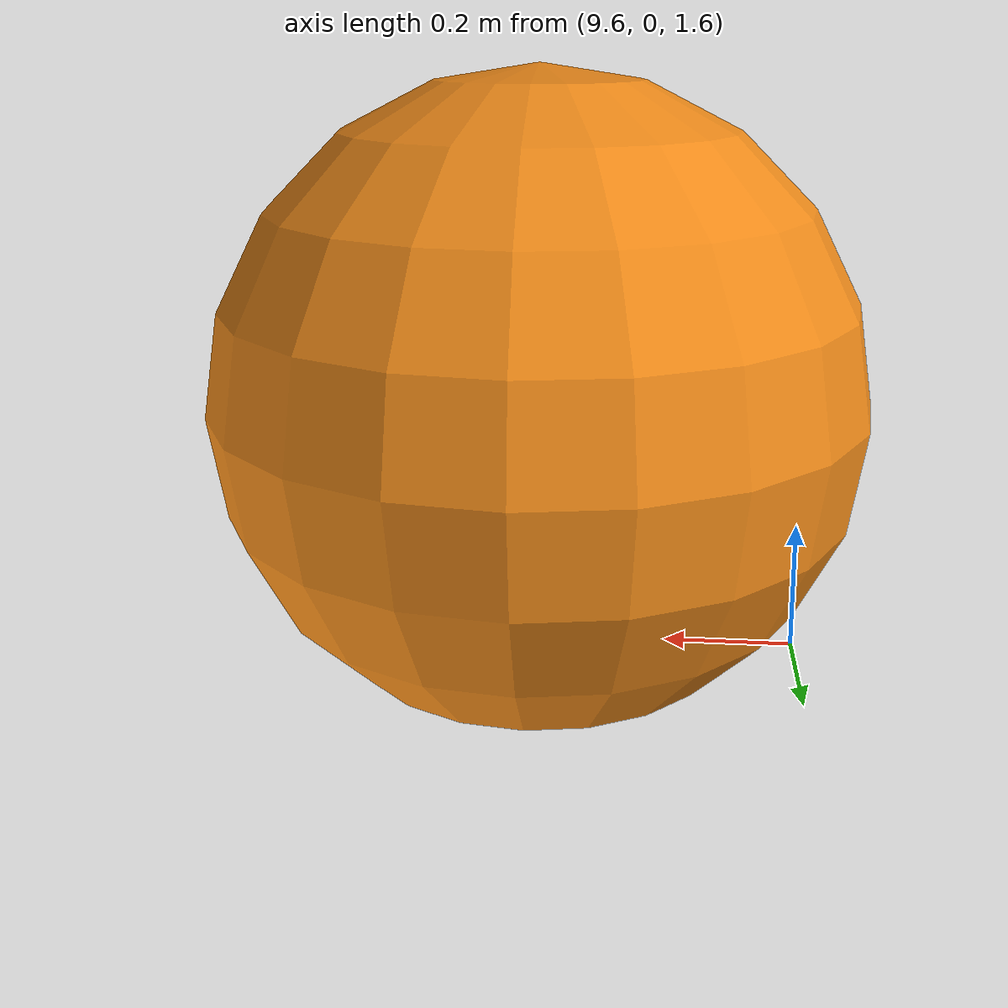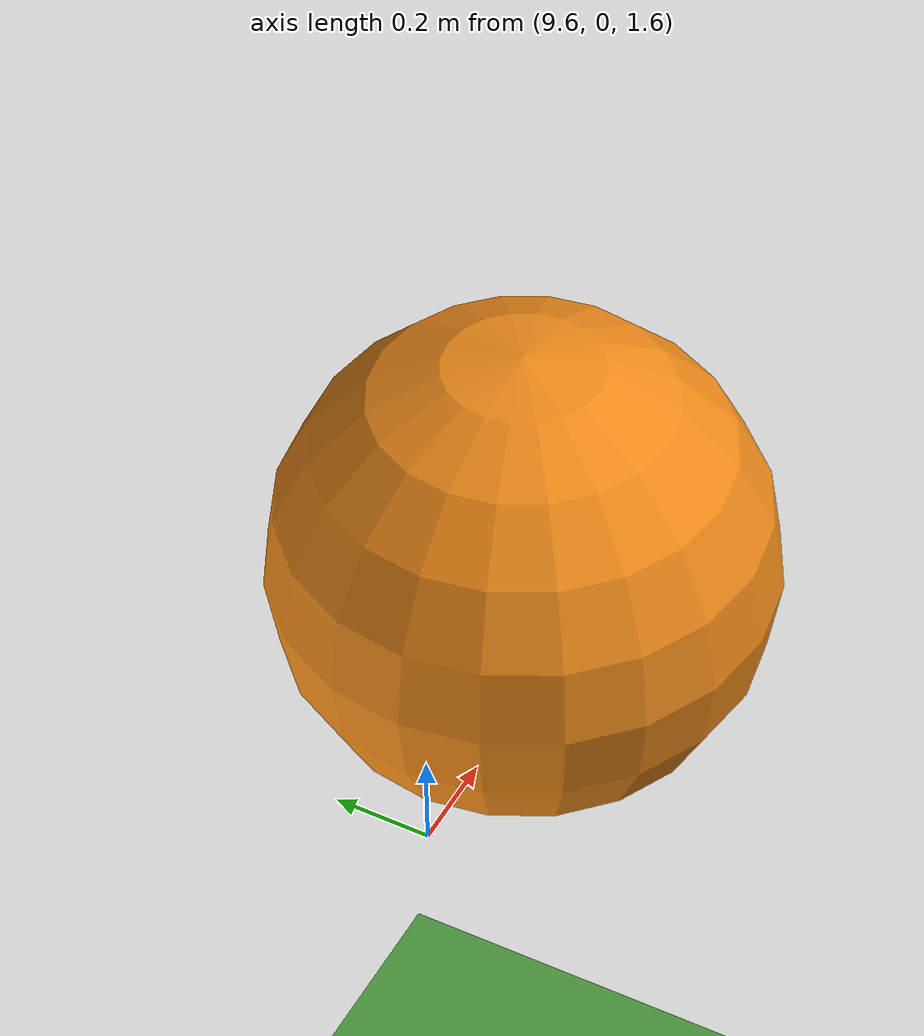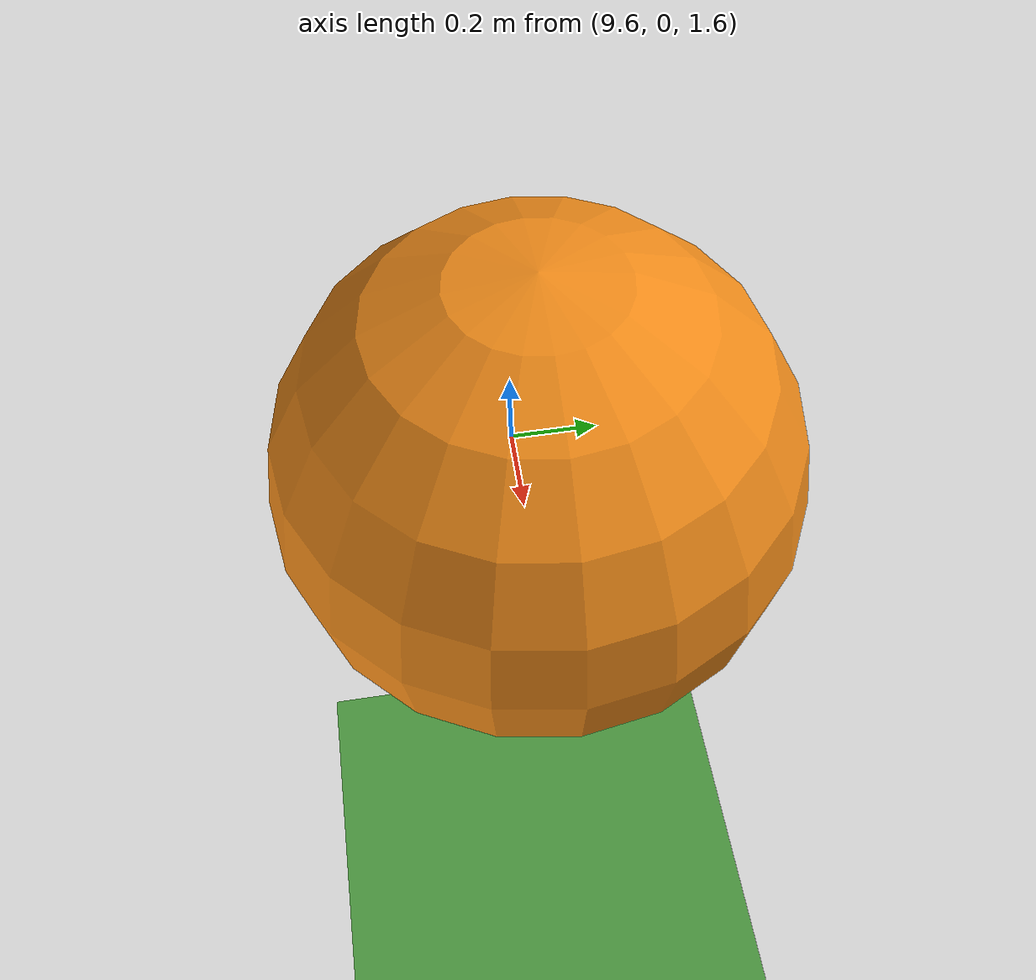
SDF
<?xml version='1.0' ?>
<sdf version='1.6'>
  <model name='mbzirc19'>
    <link name='grass'>
      <pose>0 0 -0.505 0 0 0</pose>
      <inertial>
        <mass>1e+06</mass>
        <inertia>
          <ixx>0.166667</ixx>
          <ixy>0</ixy>
          <ixz>0</ixz>
          <iyy>0.166667</iyy>
          <iyz>0</iyz>
          <izz>0.166667</izz>
        </inertia>
        <pose>0 0 0 0 0 0</pose>
      </inertial>
      <gravity>1</gravity>
      <self_collide>0</self_collide>
      <kinematic>0</kinematic>
      <visual name='visual'>
        <pose>0 0 0 0 0 0</pose>
        <geometry>
          <box>
            <size>100 60 1</size>
          </box>
        </geometry>
        <material>
          <lighting>1</lighting>
          <script>
            <uri>/home/tkakusa/catkin_ws/src/rover_research/models/world_1/materials/scripts</uri>
            <uri>/home/tkakusa/catkin_ws/src/rover_research/models/world_1/materials/textures</uri>
            <name>Kentland/Grass</name>
          </script>
        </material>
        <transparency>0</transparency>
        <cast_shadows>1</cast_shadows>
      </visual>
      <collision name='collision'>
        <laser_retro>0</laser_retro>
        <max_contacts>10</max_contacts>
        <pose>0 0 0 0 0 0</pose>
        <geometry>
          <box>
            <size>100 60 1</size>
          </box>
        </geometry>
        <surface>
          <friction>
            <ode>
              <mu>1</mu>
              <mu2>1</mu2>
              <fdir1>0 0 0</fdir1>
              <slip1>0</slip1>
              <slip2>0</slip2>
            </ode>
            <torsional>
              <coefficient>1</coefficient>
              <patch_radius>0</patch_radius>
              <surface_radius>0</surface_radius>
              <use_patch_radius>1</use_patch_radius>
              <ode>
                <slip>0</slip>
              </ode>
            </torsional>
          </friction>
          <bounce>
            <restitution_coefficient>0</restitution_coefficient>
            <threshold>1e+06</threshold>
          </bounce>
          <contact>
            <collide_without_contact>0</collide_without_contact>
            <collide_without_contact_bitmask>1</collide_without_contact_bitmask>
            <collide_bitmask>1</collide_bitmask>
            <ode>
              <soft_cfm>0</soft_cfm>
              <soft_erp>0.2</soft_erp>
              <kp>1e+13</kp>
              <kd>1</kd>
              <max_vel>0.01</max_vel>
              <min_depth>0</min_depth>
            </ode>
            <bullet>
              <split_impulse>1</split_impulse>
              <split_impulse_penetration_threshold>-0.01</split_impulse_penetration_threshold>
              <soft_cfm>0</soft_cfm>
              <soft_erp>0.2</soft_erp>
              <kp>1e+13</kp>
              <kd>1</kd>
            </bullet>
          </contact>
        </surface>
      </collision>
    </link>
    <include name='balloon_1'>
      <pose>10 0 2 0 0 0</pose>
      <uri>/home/tkakusa/catkin_ws/src/rover_research/models/balloon</uri>
    </include>
  </model>
</sdf>

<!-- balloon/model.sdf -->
<sdf version="1.4">
<model name="my_model">
  <pose>0 0 0.5 0 0 0</pose>
  <link name="balloon_link">
    <inertial>
      <mass>1.0</mass>
      <inertia>
         <ixx>1</ixx>
         <ixy>0</ixy>
         <ixz>0</ixz>
         <iyy>1</iyy>
         <iyz>0</iyz>
         <izz>1</izz>
      </inertia>
    </inertial>
    <visual name="visual">
      <geometry>
        <sphere>
          <radius>.5</radius>
        </sphere>
      </geometry>
      <material>
        <script>
          <uri>file://media/materials/scripts/gazebo.material</uri>
          <name>Gazebo/Orange</name>
        </script>
      </material>
    </visual>
    <collision name="collision">
       <geometry>
         <sphere>
           <radius>.5</radius>
         </sphere>
       </geometry>
    </collision>
  </link>
  </model>
</sdf>
